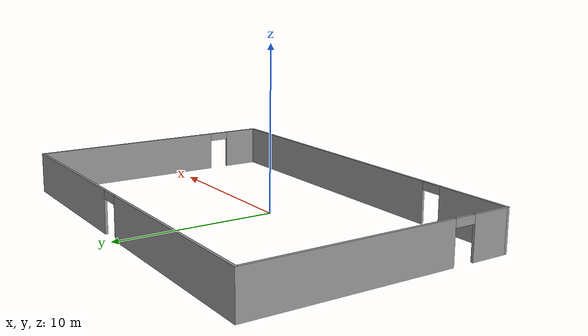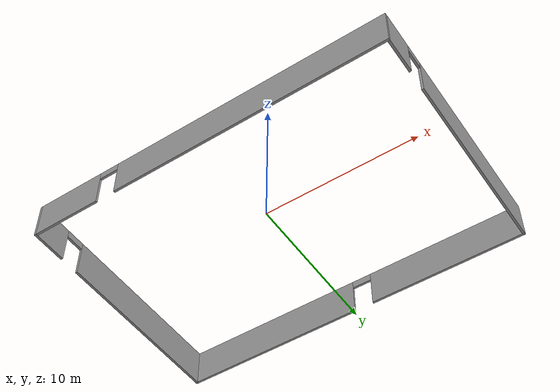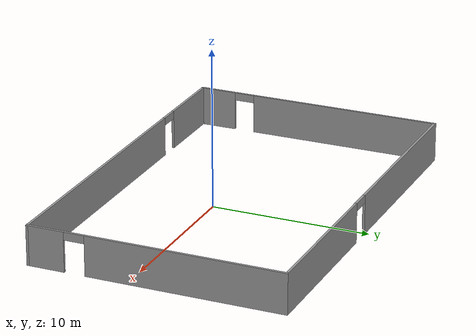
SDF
<?xml version='1.0'?>
<sdf version='1.7'>
  <model name='testbed_floor1'>
    <pose>-0.248308 1.75328 0 0 -0 0</pose>
    <link name='Wall_14'>
      <pose>0 7.925 0 0 -0 0</pose>
      <visual name='Wall_14_Visual_0'>
        <pose>-5.81586 0 1.25 0 -0 0</pose>
        <geometry>
          <box>
            <size>12.3683 0.15 2.5</size>
          </box>
        </geometry>
        <material>
          <script>
            <uri>file://media/materials/scripts/gazebo.material</uri>
            <name>Gazebo/Grey</name>
          </script>
          <ambient>1 1 1 1</ambient>
        </material>
        <meta>
          <layer>0</layer>
        </meta>
      </visual>
      <collision name='Wall_14_Collision_0'>
        <geometry>
          <box>
            <size>12.3683 0.15 2.5</size>
          </box>
        </geometry>
        <pose>-5.81586 0 1.25 0 -0 0</pose>
      </collision>
      <visual name='Wall_14_Visual_1'>
        <pose>6.83413 0 1.25 0 -0 0</pose>
        <geometry>
          <box>
            <size>10.3317 0.15 2.5</size>
          </box>
        </geometry>
        <material>
          <script>
            <uri>file://media/materials/scripts/gazebo.material</uri>
            <name>Gazebo/Grey</name>
          </script>
          <ambient>1 1 1 1</ambient>
        </material>
        <meta>
          <layer>0</layer>
        </meta>
      </visual>
      <collision name='Wall_14_Collision_1'>
        <geometry>
          <box>
            <size>10.3317 0.15 2.5</size>
          </box>
        </geometry>
        <pose>6.83413 0 1.25 0 -0 0</pose>
      </collision>
      <visual name='Wall_14_Visual_2'>
        <pose>1.01827 0 2.25 0 -0 0</pose>
        <geometry>
          <box>
            <size>1.3 0.15 0.5</size>
          </box>
        </geometry>
        <material>
          <script>
            <uri>file://media/materials/scripts/gazebo.material</uri>
            <name>Gazebo/Grey</name>
          </script>
          <ambient>1 1 1 1</ambient>
        </material>
        <meta>
          <layer>0</layer>
        </meta>
      </visual>
      <collision name='Wall_14_Collision_2'>
        <geometry>
          <box>
            <size>1.3 0.15 0.5</size>
          </box>
        </geometry>
        <pose>1.01827 0 2.25 0 -0 0</pose>
      </collision>
    </link>
    <link name='Wall_15'>
      <pose>11.925 -0 0 0 -0 -1.5708</pose>
      <visual name='Wall_15_Visual_0'>
        <pose>-1.84004 0 1.25 0 -0 0</pose>
        <geometry>
          <box>
            <size>12.3199 0.15 2.5</size>
          </box>
        </geometry>
        <material>
          <script>
            <uri>file://media/materials/scripts/gazebo.material</uri>
            <name>Gazebo/Grey</name>
          </script>
          <ambient>1 1 1 1</ambient>
        </material>
        <meta>
          <layer>0</layer>
        </meta>
      </visual>
      <collision name='Wall_15_Collision_0'>
        <geometry>
          <box>
            <size>12.3199 0.15 2.5</size>
          </box>
        </geometry>
        <pose>-1.84004 0 1.25 0 -0 0</pose>
      </collision>
      <visual name='Wall_15_Visual_1'>
        <pose>6.80996 0 1.25 0 -0 0</pose>
        <geometry>
          <box>
            <size>2.38008 0.15 2.5</size>
          </box>
        </geometry>
        <material>
          <script>
            <uri>file://media/materials/scripts/gazebo.material</uri>
            <name>Gazebo/Grey</name>
          </script>
          <ambient>1 1 1 1</ambient>
        </material>
        <meta>
          <layer>0</layer>
        </meta>
      </visual>
      <collision name='Wall_15_Collision_1'>
        <geometry>
          <box>
            <size>2.38008 0.15 2.5</size>
          </box>
        </geometry>
        <pose>6.80996 0 1.25 0 -0 0</pose>
      </collision>
      <visual name='Wall_15_Visual_2'>
        <pose>4.96992 0 2.25 0 -0 0</pose>
        <geometry>
          <box>
            <size>1.3 0.15 0.5</size>
          </box>
        </geometry>
        <material>
          <script>
            <uri>file://media/materials/scripts/gazebo.material</uri>
            <name>Gazebo/Grey</name>
          </script>
          <ambient>1 1 1 1</ambient>
        </material>
        <meta>
          <layer>0</layer>
        </meta>
      </visual>
      <collision name='Wall_15_Collision_2'>
        <geometry>
          <box>
            <size>1.3 0.15 0.5</size>
          </box>
        </geometry>
        <pose>4.96992 0 2.25 0 -0 0</pose>
      </collision>
    </link>
    <link name='Wall_16'>
      <pose>0 -7.925 0 0 -0 3.14159</pose>
      <visual name='Wall_16_Visual_0'>
        <pose>-2.99991 0 1.25 0 -0 0</pose>
        <geometry>
          <box>
            <size>18.0002 0.15 2.5</size>
          </box>
        </geometry>
        <material>
          <script>
            <uri>file://media/materials/scripts/gazebo.material</uri>
            <name>Gazebo/Grey</name>
          </script>
          <ambient>1 1 1 1</ambient>
        </material>
        <meta>
          <layer>0</layer>
        </meta>
      </visual>
      <collision name='Wall_16_Collision_0'>
        <geometry>
          <box>
            <size>18.0002 0.15 2.5</size>
          </box>
        </geometry>
        <pose>-2.99991 0 1.25 0 -0 0</pose>
      </collision>
      <visual name='Wall_16_Visual_1'>
        <pose>9.65009 0 1.25 0 -0 0</pose>
        <geometry>
          <box>
            <size>4.69982 0.15 2.5</size>
          </box>
        </geometry>
        <material>
          <script>
            <uri>file://media/materials/scripts/gazebo.material</uri>
            <name>Gazebo/Grey</name>
          </script>
          <ambient>1 1 1 1</ambient>
        </material>
        <meta>
          <layer>0</layer>
        </meta>
      </visual>
      <collision name='Wall_16_Collision_1'>
        <geometry>
          <box>
            <size>4.69982 0.15 2.5</size>
          </box>
        </geometry>
        <pose>9.65009 0 1.25 0 -0 0</pose>
      </collision>
      <visual name='Wall_16_Visual_2'>
        <pose>6.65018 0 2.25 0 -0 0</pose>
        <geometry>
          <box>
            <size>1.3 0.15 0.5</size>
          </box>
        </geometry>
        <material>
          <script>
            <uri>file://media/materials/scripts/gazebo.material</uri>
            <name>Gazebo/Grey</name>
          </script>
          <ambient>1 1 1 1</ambient>
        </material>
        <meta>
          <layer>0</layer>
        </meta>
      </visual>
      <collision name='Wall_16_Collision_2'>
        <geometry>
          <box>
            <size>1.3 0.15 0.5</size>
          </box>
        </geometry>
        <pose>6.65018 0 2.25 0 -0 0</pose>
      </collision>
    </link>
    <link name='Wall_17'>
      <pose>-11.925 -0 0 0 -0 1.5708</pose>
      <visual name='Wall_17_Visual_0'>
        <pose>-6.80997 0 1.25 0 -0 0</pose>
        <geometry>
          <box>
            <size>2.38006 0.15 2.5</size>
          </box>
        </geometry>
        <material>
          <script>
            <uri>file://media/materials/scripts/gazebo.material</uri>
            <name>Gazebo/Grey</name>
          </script>
          <ambient>1 1 1 1</ambient>
        </material>
        <meta>
          <layer>0</layer>
        </meta>
      </visual>
      <collision name='Wall_17_Collision_0'>
        <geometry>
          <box>
            <size>2.38006 0.15 2.5</size>
          </box>
        </geometry>
        <pose>-6.80997 0 1.25 0 -0 0</pose>
      </collision>
      <visual name='Wall_17_Visual_1'>
        <pose>1.84003 0 1.25 0 -0 0</pose>
        <geometry>
          <box>
            <size>12.3199 0.15 2.5</size>
          </box>
        </geometry>
        <material>
          <script>
            <uri>file://media/materials/scripts/gazebo.material</uri>
            <name>Gazebo/Grey</name>
          </script>
          <ambient>1 1 1 1</ambient>
        </material>
        <meta>
          <layer>0</layer>
        </meta>
      </visual>
      <collision name='Wall_17_Collision_1'>
        <geometry>
          <box>
            <size>12.3199 0.15 2.5</size>
          </box>
        </geometry>
        <pose>1.84003 0 1.25 0 -0 0</pose>
      </collision>
      <visual name='Wall_17_Visual_2'>
        <pose>-4.96994 0 2.25 0 -0 0</pose>
        <geometry>
          <box>
            <size>1.3 0.15 0.5</size>
          </box>
        </geometry>
        <material>
          <script>
            <uri>file://media/materials/scripts/gazebo.material</uri>
            <name>Gazebo/Grey</name>
          </script>
          <ambient>1 1 1 1</ambient>
        </material>
        <meta>
          <layer>0</layer>
        </meta>
      </visual>
      <collision name='Wall_17_Collision_2'>
        <geometry>
          <box>
            <size>1.3 0.15 0.5</size>
          </box>
        </geometry>
        <pose>-4.96994 0 2.25 0 -0 0</pose>
      </collision>
    </link>
    <static>1</static>
  </model>
</sdf>
